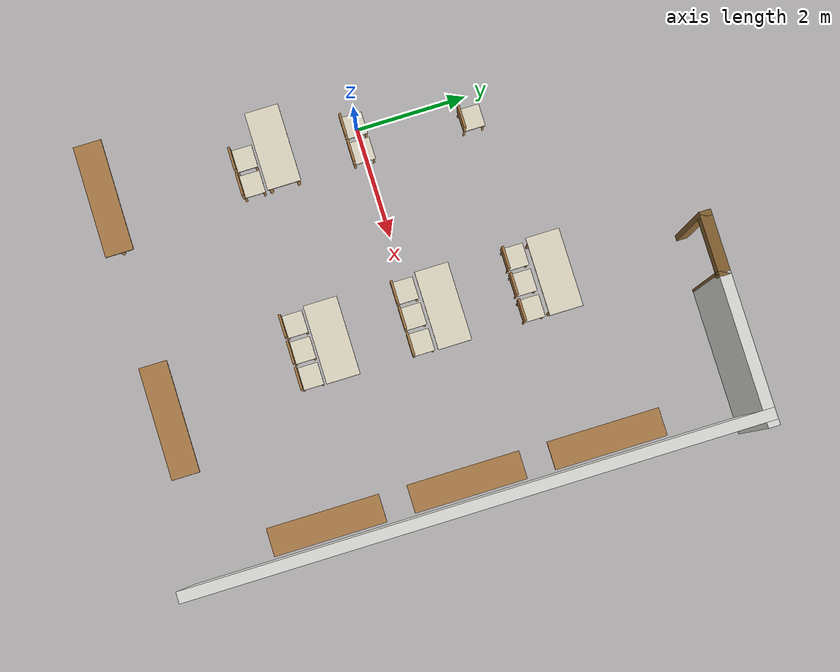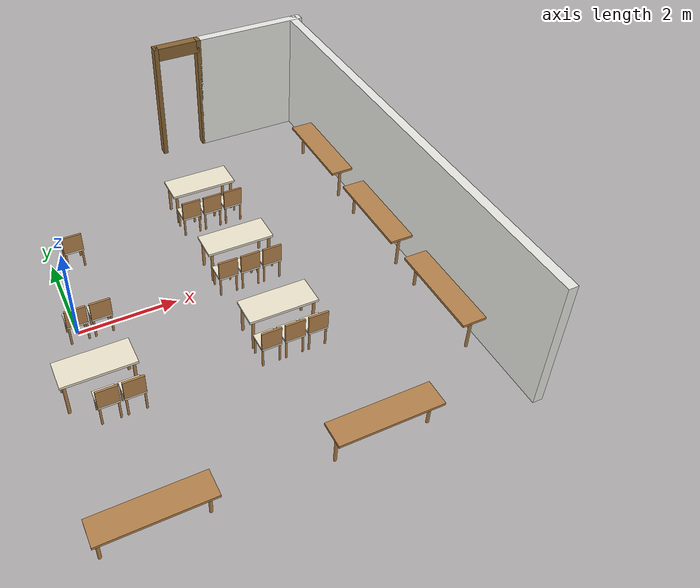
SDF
<sdf version="1.10">
 <world name="mecanum_classroom">
  <model name="wall_north_C">
   <static>true</static>
   <pose>5.8 4.9 1.4 0 0 0</pose>
   <link name="link">
    <collision name="col"><geometry><box><size>2.6 0.2 2.8</size></box></geometry></collision>
    <visual name="vis">
     <geometry><box><size>2.6 0.2 2.8</size></box></geometry>
     <material><ambient>0.92 0.92 0.90 1</ambient><diffuse>0.92 0.92 0.90 1</diffuse></material>
    </visual>
   </link>
  </model>
  <model name="wall_east">
   <static>true</static>
   <pose>6.9 0.0 1.4 0 0 0</pose>
   <link name="link">
    <collision name="col"><geometry><box><size>0.2 10.0 2.8</size></box></geometry></collision>
    <visual name="vis">
     <geometry><box><size>0.2 10.0 2.8</size></box></geometry>
     <material><ambient>0.92 0.92 0.90 1</ambient><diffuse>0.92 0.92 0.90 1</diffuse></material>
    </visual>
   </link>
  </model>
  <model name="door_pillar_RL">
   <static>true</static>
   <pose>3.5 4.9 1.4 0 0 0</pose>
   <link name="link">
    <collision name="col"><geometry><box><size>0.1 0.2 2.8</size></box></geometry></collision>
    <visual name="vis">
     <geometry><box><size>0.1 0.2 2.8</size></box></geometry>
     <material><ambient>0.55 0.40 0.20 1</ambient><diffuse>0.55 0.40 0.20 1</diffuse></material>
    </visual>
   </link>
  </model>
  <model name="door_pillar_RR">
   <static>true</static>
   <pose>4.5 4.9 1.4 0 0 0</pose>
   <link name="link">
    <collision name="col"><geometry><box><size>0.1 0.2 2.8</size></box></geometry></collision>
    <visual name="vis">
     <geometry><box><size>0.1 0.2 2.8</size></box></geometry>
     <material><ambient>0.55 0.40 0.20 1</ambient><diffuse>0.55 0.40 0.20 1</diffuse></material>
    </visual>
   </link>
  </model>
  <model name="door_R_lintel">
   <static>true</static>
   <pose>4.0 4.9 2.65 0 0 0</pose>
   <link name="link">
    <collision name="col"><geometry><box><size>1.0 0.2 0.3</size></box></geometry></collision>
    <visual name="vis">
     <geometry><box><size>1.0 0.2 0.3</size></box></geometry>
     <material><ambient>0.55 0.40 0.20 1</ambient><diffuse>0.55 0.40 0.20 1</diffuse></material>
    </visual>
   </link>
  </model>
  <model name="chr_r1c2_c">
   <static>true</static>
   <pose>0.47 1.95 0.45 0 0 0</pose>
   <link name="link">
    <visual name="seat">
     <geometry><box><size>0.40 0.40 0.04</size></box></geometry>
     <material><ambient>0.94 0.91 0.82 1</ambient><diffuse>0.94 0.91 0.82 1</diffuse></material>
    </visual>
    <visual name="back">
     <pose>0 -0.18 0.22 0 0 0</pose>
     <geometry><box><size>0.40 0.04 0.40</size></box></geometry>
     <material><ambient>0.72 0.52 0.30 1</ambient><diffuse>0.72 0.52 0.30 1</diffuse></material>
    </visual>
    <visual name="leg_fl">
     <pose>-0.17 -0.17 -0.225 0 0 0</pose>
     <geometry><cylinder><radius>0.02</radius><length>0.45</length></cylinder></geometry>
     <material><ambient>0.72 0.52 0.30 1</ambient><diffuse>0.72 0.52 0.30 1</diffuse></material>
    </visual>
    <visual name="leg_fr">
     <pose>0.17 -0.17 -0.225 0 0 0</pose>
     <geometry><cylinder><radius>0.02</radius><length>0.45</length></cylinder></geometry>
     <material><ambient>0.72 0.52 0.30 1</ambient><diffuse>0.72 0.52 0.30 1</diffuse></material>
    </visual>
    <visual name="leg_bl">
     <pose>-0.17 0.17 -0.225 0 0 0</pose>
     <geometry><cylinder><radius>0.02</radius><length>0.45</length></cylinder></geometry>
     <material><ambient>0.72 0.52 0.30 1</ambient><diffuse>0.72 0.52 0.30 1</diffuse></material>
    </visual>
    <visual name="leg_br">
     <pose>0.17 0.17 -0.225 0 0 0</pose>
     <geometry><cylinder><radius>0.02</radius><length>0.45</length></cylinder></geometry>
     <material><ambient>0.72 0.52 0.30 1</ambient><diffuse>0.72 0.52 0.30 1</diffuse></material>
    </visual>
    <collision name="col"><geometry><box><size>0.40 0.40 0.04</size></box></geometry></collision>
   </link>
  </model>
  <model name="tbl_r1c3_top">
   <static>true</static>
   <pose>3.5 2.5 0.73 0 0 0</pose>
   <link name="link">
    <collision name="col"><geometry><box><size>1.4 0.6 0.05</size></box></geometry></collision>
    <visual name="vis">
     <geometry><box><size>1.4 0.6 0.05</size></box></geometry>
     <material><ambient>0.94 0.91 0.82 1</ambient><diffuse>0.94 0.91 0.82 1</diffuse></material>
    </visual>
   </link>
  </model>
  <model name="tbl_r1c3_legs">
   <static>true</static>
   <pose>3.5 2.5 0.36 0 0 0</pose>
   <link name="link">
    <collision name="col"><geometry><box><size>1.4 0.6 0.72</size></box></geometry></collision>
    <visual name="leg_fl">
     <pose>-0.62 -0.25 0 0 0 0</pose>
     <geometry><cylinder><radius>0.03</radius><length>0.72</length></cylinder></geometry>
     <material><ambient>0.72 0.52 0.30 1</ambient><diffuse>0.72 0.52 0.30 1</diffuse></material>
    </visual>
    <visual name="leg_fr">
     <pose>0.62 -0.25 0 0 0 0</pose>
     <geometry><cylinder><radius>0.03</radius><length>0.72</length></cylinder></geometry>
     <material><ambient>0.72 0.52 0.30 1</ambient><diffuse>0.72 0.52 0.30 1</diffuse></material>
    </visual>
    <visual name="leg_bl">
     <pose>-0.62 0.25 0 0 0 0</pose>
     <geometry><cylinder><radius>0.03</radius><length>0.72</length></cylinder></geometry>
     <material><ambient>0.72 0.52 0.30 1</ambient><diffuse>0.72 0.52 0.30 1</diffuse></material>
    </visual>
    <visual name="leg_br">
     <pose>0.62 0.25 0 0 0 0</pose>
     <geometry><cylinder><radius>0.03</radius><length>0.72</length></cylinder></geometry>
     <material><ambient>0.72 0.52 0.30 1</ambient><diffuse>0.72 0.52 0.30 1</diffuse></material>
    </visual>
   </link>
  </model>
  <model name="chr_r1c3_a">
   <static>true</static>
   <pose>3.03 1.95 0.45 0 0 0</pose>
   <link name="link">
    <visual name="seat">
     <geometry><box><size>0.40 0.40 0.04</size></box></geometry>
     <material><ambient>0.94 0.91 0.82 1</ambient><diffuse>0.94 0.91 0.82 1</diffuse></material>
    </visual>
    <visual name="back">
     <pose>0 -0.18 0.22 0 0 0</pose>
     <geometry><box><size>0.40 0.04 0.40</size></box></geometry>
     <material><ambient>0.72 0.52 0.30 1</ambient><diffuse>0.72 0.52 0.30 1</diffuse></material>
    </visual>
    <visual name="leg_fl">
     <pose>-0.17 -0.17 -0.225 0 0 0</pose>
     <geometry><cylinder><radius>0.02</radius><length>0.45</length></cylinder></geometry>
     <material><ambient>0.72 0.52 0.30 1</ambient><diffuse>0.72 0.52 0.30 1</diffuse></material>
    </visual>
    <visual name="leg_fr">
     <pose>0.17 -0.17 -0.225 0 0 0</pose>
     <geometry><cylinder><radius>0.02</radius><length>0.45</length></cylinder></geometry>
     <material><ambient>0.72 0.52 0.30 1</ambient><diffuse>0.72 0.52 0.30 1</diffuse></material>
    </visual>
    <visual name="leg_bl">
     <pose>-0.17 0.17 -0.225 0 0 0</pose>
     <geometry><cylinder><radius>0.02</radius><length>0.45</length></cylinder></geometry>
     <material><ambient>0.72 0.52 0.30 1</ambient><diffuse>0.72 0.52 0.30 1</diffuse></material>
    </visual>
    <visual name="leg_br">
     <pose>0.17 0.17 -0.225 0 0 0</pose>
     <geometry><cylinder><radius>0.02</radius><length>0.45</length></cylinder></geometry>
     <material><ambient>0.72 0.52 0.30 1</ambient><diffuse>0.72 0.52 0.30 1</diffuse></material>
    </visual>
    <collision name="col"><geometry><box><size>0.40 0.40 0.04</size></box></geometry></collision>
   </link>
  </model>
  <model name="chr_r1c3_b">
   <static>true</static>
   <pose>3.5 1.95 0.45 0 0 0</pose>
   <link name="link">
    <visual name="seat">
     <geometry><box><size>0.40 0.40 0.04</size></box></geometry>
     <material><ambient>0.94 0.91 0.82 1</ambient><diffuse>0.94 0.91 0.82 1</diffuse></material>
    </visual>
    <visual name="back">
     <pose>0 -0.18 0.22 0 0 0</pose>
     <geometry><box><size>0.40 0.04 0.40</size></box></geometry>
     <material><ambient>0.72 0.52 0.30 1</ambient><diffuse>0.72 0.52 0.30 1</diffuse></material>
    </visual>
    <visual name="leg_fl">
     <pose>-0.17 -0.17 -0.225 0 0 0</pose>
     <geometry><cylinder><radius>0.02</radius><length>0.45</length></cylinder></geometry>
     <material><ambient>0.72 0.52 0.30 1</ambient><diffuse>0.72 0.52 0.30 1</diffuse></material>
    </visual>
    <visual name="leg_fr">
     <pose>0.17 -0.17 -0.225 0 0 0</pose>
     <geometry><cylinder><radius>0.02</radius><length>0.45</length></cylinder></geometry>
     <material><ambient>0.72 0.52 0.30 1</ambient><diffuse>0.72 0.52 0.30 1</diffuse></material>
    </visual>
    <visual name="leg_bl">
     <pose>-0.17 0.17 -0.225 0 0 0</pose>
     <geometry><cylinder><radius>0.02</radius><length>0.45</length></cylinder></geometry>
     <material><ambient>0.72 0.52 0.30 1</ambient><diffuse>0.72 0.52 0.30 1</diffuse></material>
    </visual>
    <visual name="leg_br">
     <pose>0.17 0.17 -0.225 0 0 0</pose>
     <geometry><cylinder><radius>0.02</radius><length>0.45</length></cylinder></geometry>
     <material><ambient>0.72 0.52 0.30 1</ambient><diffuse>0.72 0.52 0.30 1</diffuse></material>
    </visual>
    <collision name="col"><geometry><box><size>0.40 0.40 0.04</size></box></geometry></collision>
   </link>
  </model>
  <model name="chr_r1c3_c">
   <static>true</static>
   <pose>3.97 1.95 0.45 0 0 0</pose>
   <link name="link">
    <visual name="seat">
     <geometry><box><size>0.40 0.40 0.04</size></box></geometry>
     <material><ambient>0.94 0.91 0.82 1</ambient><diffuse>0.94 0.91 0.82 1</diffuse></material>
    </visual>
    <visual name="back">
     <pose>0 -0.18 0.22 0 0 0</pose>
     <geometry><box><size>0.40 0.04 0.40</size></box></geometry>
     <material><ambient>0.72 0.52 0.30 1</ambient><diffuse>0.72 0.52 0.30 1</diffuse></material>
    </visual>
    <visual name="leg_fl">
     <pose>-0.17 -0.17 -0.225 0 0 0</pose>
     <geometry><cylinder><radius>0.02</radius><length>0.45</length></cylinder></geometry>
     <material><ambient>0.72 0.52 0.30 1</ambient><diffuse>0.72 0.52 0.30 1</diffuse></material>
    </visual>
    <visual name="leg_fr">
     <pose>0.17 -0.17 -0.225 0 0 0</pose>
     <geometry><cylinder><radius>0.02</radius><length>0.45</length></cylinder></geometry>
     <material><ambient>0.72 0.52 0.30 1</ambient><diffuse>0.72 0.52 0.30 1</diffuse></material>
    </visual>
    <visual name="leg_bl">
     <pose>-0.17 0.17 -0.225 0 0 0</pose>
     <geometry><cylinder><radius>0.02</radius><length>0.45</length></cylinder></geometry>
     <material><ambient>0.72 0.52 0.30 1</ambient><diffuse>0.72 0.52 0.30 1</diffuse></material>
    </visual>
    <visual name="leg_br">
     <pose>0.17 0.17 -0.225 0 0 0</pose>
     <geometry><cylinder><radius>0.02</radius><length>0.45</length></cylinder></geometry>
     <material><ambient>0.72 0.52 0.30 1</ambient><diffuse>0.72 0.52 0.30 1</diffuse></material>
    </visual>
    <collision name="col"><geometry><box><size>0.40 0.40 0.04</size></box></geometry></collision>
   </link>
  </model>
  <model name="chr_r2c2_b">
   <static>true</static>
   <pose>0.0 -0.05 0.45 0 0 0</pose>
   <link name="link">
    <visual name="seat">
     <geometry><box><size>0.40 0.40 0.04</size></box></geometry>
     <material><ambient>0.94 0.91 0.82 1</ambient><diffuse>0.94 0.91 0.82 1</diffuse></material>
    </visual>
    <visual name="back">
     <pose>0 -0.18 0.22 0 0 0</pose>
     <geometry><box><size>0.40 0.04 0.40</size></box></geometry>
     <material><ambient>0.72 0.52 0.30 1</ambient><diffuse>0.72 0.52 0.30 1</diffuse></material>
    </visual>
    <visual name="leg_fl">
     <pose>-0.17 -0.17 -0.225 0 0 0</pose>
     <geometry><cylinder><radius>0.02</radius><length>0.45</length></cylinder></geometry>
     <material><ambient>0.72 0.52 0.30 1</ambient><diffuse>0.72 0.52 0.30 1</diffuse></material>
    </visual>
    <visual name="leg_fr">
     <pose>0.17 -0.17 -0.225 0 0 0</pose>
     <geometry><cylinder><radius>0.02</radius><length>0.45</length></cylinder></geometry>
     <material><ambient>0.72 0.52 0.30 1</ambient><diffuse>0.72 0.52 0.30 1</diffuse></material>
    </visual>
    <visual name="leg_bl">
     <pose>-0.17 0.17 -0.225 0 0 0</pose>
     <geometry><cylinder><radius>0.02</radius><length>0.45</length></cylinder></geometry>
     <material><ambient>0.72 0.52 0.30 1</ambient><diffuse>0.72 0.52 0.30 1</diffuse></material>
    </visual>
    <visual name="leg_br">
     <pose>0.17 0.17 -0.225 0 0 0</pose>
     <geometry><cylinder><radius>0.02</radius><length>0.45</length></cylinder></geometry>
     <material><ambient>0.72 0.52 0.30 1</ambient><diffuse>0.72 0.52 0.30 1</diffuse></material>
    </visual>
    <collision name="col"><geometry><box><size>0.40 0.40 0.04</size></box></geometry></collision>
   </link>
  </model>
  <model name="chr_r2c2_c">
   <static>true</static>
   <pose>0.47 -0.05 0.45 0 0 0</pose>
   <link name="link">
    <visual name="seat">
     <geometry><box><size>0.40 0.40 0.04</size></box></geometry>
     <material><ambient>0.94 0.91 0.82 1</ambient><diffuse>0.94 0.91 0.82 1</diffuse></material>
    </visual>
    <visual name="back">
     <pose>0 -0.18 0.22 0 0 0</pose>
     <geometry><box><size>0.40 0.04 0.40</size></box></geometry>
     <material><ambient>0.72 0.52 0.30 1</ambient><diffuse>0.72 0.52 0.30 1</diffuse></material>
    </visual>
    <visual name="leg_fl">
     <pose>-0.17 -0.17 -0.225 0 0 0</pose>
     <geometry><cylinder><radius>0.02</radius><length>0.45</length></cylinder></geometry>
     <material><ambient>0.72 0.52 0.30 1</ambient><diffuse>0.72 0.52 0.30 1</diffuse></material>
    </visual>
    <visual name="leg_fr">
     <pose>0.17 -0.17 -0.225 0 0 0</pose>
     <geometry><cylinder><radius>0.02</radius><length>0.45</length></cylinder></geometry>
     <material><ambient>0.72 0.52 0.30 1</ambient><diffuse>0.72 0.52 0.30 1</diffuse></material>
    </visual>
    <visual name="leg_bl">
     <pose>-0.17 0.17 -0.225 0 0 0</pose>
     <geometry><cylinder><radius>0.02</radius><length>0.45</length></cylinder></geometry>
     <material><ambient>0.72 0.52 0.30 1</ambient><diffuse>0.72 0.52 0.30 1</diffuse></material>
    </visual>
    <visual name="leg_br">
     <pose>0.17 0.17 -0.225 0 0 0</pose>
     <geometry><cylinder><radius>0.02</radius><length>0.45</length></cylinder></geometry>
     <material><ambient>0.72 0.52 0.30 1</ambient><diffuse>0.72 0.52 0.30 1</diffuse></material>
    </visual>
    <collision name="col"><geometry><box><size>0.40 0.40 0.04</size></box></geometry></collision>
   </link>
  </model>
  <model name="tbl_r2c3_top">
   <static>true</static>
   <pose>3.5 0.5 0.73 0 0 0</pose>
   <link name="link">
    <collision name="col"><geometry><box><size>1.4 0.6 0.05</size></box></geometry></collision>
    <visual name="vis">
     <geometry><box><size>1.4 0.6 0.05</size></box></geometry>
     <material><ambient>0.94 0.91 0.82 1</ambient><diffuse>0.94 0.91 0.82 1</diffuse></material>
    </visual>
   </link>
  </model>
  <model name="tbl_r2c3_legs">
   <static>true</static>
   <pose>3.5 0.5 0.36 0 0 0</pose>
   <link name="link">
    <collision name="col"><geometry><box><size>1.4 0.6 0.72</size></box></geometry></collision>
    <visual name="leg_fl">
     <pose>-0.62 -0.25 0 0 0 0</pose>
     <geometry><cylinder><radius>0.03</radius><length>0.72</length></cylinder></geometry>
     <material><ambient>0.72 0.52 0.30 1</ambient><diffuse>0.72 0.52 0.30 1</diffuse></material>
    </visual>
    <visual name="leg_fr">
     <pose>0.62 -0.25 0 0 0 0</pose>
     <geometry><cylinder><radius>0.03</radius><length>0.72</length></cylinder></geometry>
     <material><ambient>0.72 0.52 0.30 1</ambient><diffuse>0.72 0.52 0.30 1</diffuse></material>
    </visual>
    <visual name="leg_bl">
     <pose>-0.62 0.25 0 0 0 0</pose>
     <geometry><cylinder><radius>0.03</radius><length>0.72</length></cylinder></geometry>
     <material><ambient>0.72 0.52 0.30 1</ambient><diffuse>0.72 0.52 0.30 1</diffuse></material>
    </visual>
    <visual name="leg_br">
     <pose>0.62 0.25 0 0 0 0</pose>
     <geometry><cylinder><radius>0.03</radius><length>0.72</length></cylinder></geometry>
     <material><ambient>0.72 0.52 0.30 1</ambient><diffuse>0.72 0.52 0.30 1</diffuse></material>
    </visual>
   </link>
  </model>
  <model name="chr_r2c3_a">
   <static>true</static>
   <pose>3.03 -0.05 0.45 0 0 0</pose>
   <link name="link">
    <visual name="seat">
     <geometry><box><size>0.40 0.40 0.04</size></box></geometry>
     <material><ambient>0.94 0.91 0.82 1</ambient><diffuse>0.94 0.91 0.82 1</diffuse></material>
    </visual>
    <visual name="back">
     <pose>0 -0.18 0.22 0 0 0</pose>
     <geometry><box><size>0.40 0.04 0.40</size></box></geometry>
     <material><ambient>0.72 0.52 0.30 1</ambient><diffuse>0.72 0.52 0.30 1</diffuse></material>
    </visual>
    <visual name="leg_fl">
     <pose>-0.17 -0.17 -0.225 0 0 0</pose>
     <geometry><cylinder><radius>0.02</radius><length>0.45</length></cylinder></geometry>
     <material><ambient>0.72 0.52 0.30 1</ambient><diffuse>0.72 0.52 0.30 1</diffuse></material>
    </visual>
    <visual name="leg_fr">
     <pose>0.17 -0.17 -0.225 0 0 0</pose>
     <geometry><cylinder><radius>0.02</radius><length>0.45</length></cylinder></geometry>
     <material><ambient>0.72 0.52 0.30 1</ambient><diffuse>0.72 0.52 0.30 1</diffuse></material>
    </visual>
    <visual name="leg_bl">
     <pose>-0.17 0.17 -0.225 0 0 0</pose>
     <geometry><cylinder><radius>0.02</radius><length>0.45</length></cylinder></geometry>
     <material><ambient>0.72 0.52 0.30 1</ambient><diffuse>0.72 0.52 0.30 1</diffuse></material>
    </visual>
    <visual name="leg_br">
     <pose>0.17 0.17 -0.225 0 0 0</pose>
     <geometry><cylinder><radius>0.02</radius><length>0.45</length></cylinder></geometry>
     <material><ambient>0.72 0.52 0.30 1</ambient><diffuse>0.72 0.52 0.30 1</diffuse></material>
    </visual>
    <collision name="col"><geometry><box><size>0.40 0.40 0.04</size></box></geometry></collision>
   </link>
  </model>
  <model name="chr_r2c3_b">
   <static>true</static>
   <pose>3.5 -0.05 0.45 0 0 0</pose>
   <link name="link">
    <visual name="seat">
     <geometry><box><size>0.40 0.40 0.04</size></box></geometry>
     <material><ambient>0.94 0.91 0.82 1</ambient><diffuse>0.94 0.91 0.82 1</diffuse></material>
    </visual>
    <visual name="back">
     <pose>0 -0.18 0.22 0 0 0</pose>
     <geometry><box><size>0.40 0.04 0.40</size></box></geometry>
     <material><ambient>0.72 0.52 0.30 1</ambient><diffuse>0.72 0.52 0.30 1</diffuse></material>
    </visual>
    <visual name="leg_fl">
     <pose>-0.17 -0.17 -0.225 0 0 0</pose>
     <geometry><cylinder><radius>0.02</radius><length>0.45</length></cylinder></geometry>
     <material><ambient>0.72 0.52 0.30 1</ambient><diffuse>0.72 0.52 0.30 1</diffuse></material>
    </visual>
    <visual name="leg_fr">
     <pose>0.17 -0.17 -0.225 0 0 0</pose>
     <geometry><cylinder><radius>0.02</radius><length>0.45</length></cylinder></geometry>
     <material><ambient>0.72 0.52 0.30 1</ambient><diffuse>0.72 0.52 0.30 1</diffuse></material>
    </visual>
    <visual name="leg_bl">
     <pose>-0.17 0.17 -0.225 0 0 0</pose>
     <geometry><cylinder><radius>0.02</radius><length>0.45</length></cylinder></geometry>
     <material><ambient>0.72 0.52 0.30 1</ambient><diffuse>0.72 0.52 0.30 1</diffuse></material>
    </visual>
    <visual name="leg_br">
     <pose>0.17 0.17 -0.225 0 0 0</pose>
     <geometry><cylinder><radius>0.02</radius><length>0.45</length></cylinder></geometry>
     <material><ambient>0.72 0.52 0.30 1</ambient><diffuse>0.72 0.52 0.30 1</diffuse></material>
    </visual>
    <collision name="col"><geometry><box><size>0.40 0.40 0.04</size></box></geometry></collision>
   </link>
  </model>
  <model name="chr_r2c3_c">
   <static>true</static>
   <pose>3.97 -0.05 0.45 0 0 0</pose>
   <link name="link">
    <visual name="seat">
     <geometry><box><size>0.40 0.40 0.04</size></box></geometry>
     <material><ambient>0.94 0.91 0.82 1</ambient><diffuse>0.94 0.91 0.82 1</diffuse></material>
    </visual>
    <visual name="back">
     <pose>0 -0.18 0.22 0 0 0</pose>
     <geometry><box><size>0.40 0.04 0.40</size></box></geometry>
     <material><ambient>0.72 0.52 0.30 1</ambient><diffuse>0.72 0.52 0.30 1</diffuse></material>
    </visual>
    <visual name="leg_fl">
     <pose>-0.17 -0.17 -0.225 0 0 0</pose>
     <geometry><cylinder><radius>0.02</radius><length>0.45</length></cylinder></geometry>
     <material><ambient>0.72 0.52 0.30 1</ambient><diffuse>0.72 0.52 0.30 1</diffuse></material>
    </visual>
    <visual name="leg_fr">
     <pose>0.17 -0.17 -0.225 0 0 0</pose>
     <geometry><cylinder><radius>0.02</radius><length>0.45</length></cylinder></geometry>
     <material><ambient>0.72 0.52 0.30 1</ambient><diffuse>0.72 0.52 0.30 1</diffuse></material>
    </visual>
    <visual name="leg_bl">
     <pose>-0.17 0.17 -0.225 0 0 0</pose>
     <geometry><cylinder><radius>0.02</radius><length>0.45</length></cylinder></geometry>
     <material><ambient>0.72 0.52 0.30 1</ambient><diffuse>0.72 0.52 0.30 1</diffuse></material>
    </visual>
    <visual name="leg_br">
     <pose>0.17 0.17 -0.225 0 0 0</pose>
     <geometry><cylinder><radius>0.02</radius><length>0.45</length></cylinder></geometry>
     <material><ambient>0.72 0.52 0.30 1</ambient><diffuse>0.72 0.52 0.30 1</diffuse></material>
    </visual>
    <collision name="col"><geometry><box><size>0.40 0.40 0.04</size></box></geometry></collision>
   </link>
  </model>
  <model name="tbl_r3c2_top">
   <static>true</static>
   <pose>0.0 -1.5 0.73 0 0 0</pose>
   <link name="link">
    <collision name="col"><geometry><box><size>1.4 0.6 0.05</size></box></geometry></collision>
    <visual name="vis">
     <geometry><box><size>1.4 0.6 0.05</size></box></geometry>
     <material><ambient>0.94 0.91 0.82 1</ambient><diffuse>0.94 0.91 0.82 1</diffuse></material>
    </visual>
   </link>
  </model>
  <model name="tbl_r3c2_legs">
   <static>true</static>
   <pose>0.0 -1.5 0.36 0 0 0</pose>
   <link name="link">
    <collision name="col"><geometry><box><size>1.4 0.6 0.72</size></box></geometry></collision>
    <visual name="leg_fl">
     <pose>-0.62 -0.25 0 0 0 0</pose>
     <geometry><cylinder><radius>0.03</radius><length>0.72</length></cylinder></geometry>
     <material><ambient>0.72 0.52 0.30 1</ambient><diffuse>0.72 0.52 0.30 1</diffuse></material>
    </visual>
    <visual name="leg_fr">
     <pose>0.62 -0.25 0 0 0 0</pose>
     <geometry><cylinder><radius>0.03</radius><length>0.72</length></cylinder></geometry>
     <material><ambient>0.72 0.52 0.30 1</ambient><diffuse>0.72 0.52 0.30 1</diffuse></material>
    </visual>
    <visual name="leg_bl">
     <pose>-0.62 0.25 0 0 0 0</pose>
     <geometry><cylinder><radius>0.03</radius><length>0.72</length></cylinder></geometry>
     <material><ambient>0.72 0.52 0.30 1</ambient><diffuse>0.72 0.52 0.30 1</diffuse></material>
    </visual>
    <visual name="leg_br">
     <pose>0.62 0.25 0 0 0 0</pose>
     <geometry><cylinder><radius>0.03</radius><length>0.72</length></cylinder></geometry>
     <material><ambient>0.72 0.52 0.30 1</ambient><diffuse>0.72 0.52 0.30 1</diffuse></material>
    </visual>
   </link>
  </model>
  <model name="chr_r3c2_b">
   <static>true</static>
   <pose>0.0 -2.05 0.45 0 0 0</pose>
   <link name="link">
    <visual name="seat">
     <geometry><box><size>0.40 0.40 0.04</size></box></geometry>
     <material><ambient>0.94 0.91 0.82 1</ambient><diffuse>0.94 0.91 0.82 1</diffuse></material>
    </visual>
    <visual name="back">
     <pose>0 -0.18 0.22 0 0 0</pose>
     <geometry><box><size>0.40 0.04 0.40</size></box></geometry>
     <material><ambient>0.72 0.52 0.30 1</ambient><diffuse>0.72 0.52 0.30 1</diffuse></material>
    </visual>
    <visual name="leg_fl">
     <pose>-0.17 -0.17 -0.225 0 0 0</pose>
     <geometry><cylinder><radius>0.02</radius><length>0.45</length></cylinder></geometry>
     <material><ambient>0.72 0.52 0.30 1</ambient><diffuse>0.72 0.52 0.30 1</diffuse></material>
    </visual>
    <visual name="leg_fr">
     <pose>0.17 -0.17 -0.225 0 0 0</pose>
     <geometry><cylinder><radius>0.02</radius><length>0.45</length></cylinder></geometry>
     <material><ambient>0.72 0.52 0.30 1</ambient><diffuse>0.72 0.52 0.30 1</diffuse></material>
    </visual>
    <visual name="leg_bl">
     <pose>-0.17 0.17 -0.225 0 0 0</pose>
     <geometry><cylinder><radius>0.02</radius><length>0.45</length></cylinder></geometry>
     <material><ambient>0.72 0.52 0.30 1</ambient><diffuse>0.72 0.52 0.30 1</diffuse></material>
    </visual>
    <visual name="leg_br">
     <pose>0.17 0.17 -0.225 0 0 0</pose>
     <geometry><cylinder><radius>0.02</radius><length>0.45</length></cylinder></geometry>
     <material><ambient>0.72 0.52 0.30 1</ambient><diffuse>0.72 0.52 0.30 1</diffuse></material>
    </visual>
    <collision name="col"><geometry><box><size>0.40 0.40 0.04</size></box></geometry></collision>
   </link>
  </model>
  <model name="chr_r3c2_c">
   <static>true</static>
   <pose>0.47 -2.05 0.45 0 0 0</pose>
   <link name="link">
    <visual name="seat">
     <geometry><box><size>0.40 0.40 0.04</size></box></geometry>
     <material><ambient>0.94 0.91 0.82 1</ambient><diffuse>0.94 0.91 0.82 1</diffuse></material>
    </visual>
    <visual name="back">
     <pose>0 -0.18 0.22 0 0 0</pose>
     <geometry><box><size>0.40 0.04 0.40</size></box></geometry>
     <material><ambient>0.72 0.52 0.30 1</ambient><diffuse>0.72 0.52 0.30 1</diffuse></material>
    </visual>
    <visual name="leg_fl">
     <pose>-0.17 -0.17 -0.225 0 0 0</pose>
     <geometry><cylinder><radius>0.02</radius><length>0.45</length></cylinder></geometry>
     <material><ambient>0.72 0.52 0.30 1</ambient><diffuse>0.72 0.52 0.30 1</diffuse></material>
    </visual>
    <visual name="leg_fr">
     <pose>0.17 -0.17 -0.225 0 0 0</pose>
     <geometry><cylinder><radius>0.02</radius><length>0.45</length></cylinder></geometry>
     <material><ambient>0.72 0.52 0.30 1</ambient><diffuse>0.72 0.52 0.30 1</diffuse></material>
    </visual>
    <visual name="leg_bl">
     <pose>-0.17 0.17 -0.225 0 0 0</pose>
     <geometry><cylinder><radius>0.02</radius><length>0.45</length></cylinder></geometry>
     <material><ambient>0.72 0.52 0.30 1</ambient><diffuse>0.72 0.52 0.30 1</diffuse></material>
    </visual>
    <visual name="leg_br">
     <pose>0.17 0.17 -0.225 0 0 0</pose>
     <geometry><cylinder><radius>0.02</radius><length>0.45</length></cylinder></geometry>
     <material><ambient>0.72 0.52 0.30 1</ambient><diffuse>0.72 0.52 0.30 1</diffuse></material>
    </visual>
    <collision name="col"><geometry><box><size>0.40 0.40 0.04</size></box></geometry></collision>
   </link>
  </model>
  <model name="tbl_r3c3_top">
   <static>true</static>
   <pose>3.5 -1.5 0.73 0 0 0</pose>
   <link name="link">
    <collision name="col"><geometry><box><size>1.4 0.6 0.05</size></box></geometry></collision>
    <visual name="vis">
     <geometry><box><size>1.4 0.6 0.05</size></box></geometry>
     <material><ambient>0.94 0.91 0.82 1</ambient><diffuse>0.94 0.91 0.82 1</diffuse></material>
    </visual>
   </link>
  </model>
  <model name="tbl_r3c3_legs">
   <static>true</static>
   <pose>3.5 -1.5 0.36 0 0 0</pose>
   <link name="link">
    <collision name="col"><geometry><box><size>1.4 0.6 0.72</size></box></geometry></collision>
    <visual name="leg_fl">
     <pose>-0.62 -0.25 0 0 0 0</pose>
     <geometry><cylinder><radius>0.03</radius><length>0.72</length></cylinder></geometry>
     <material><ambient>0.72 0.52 0.30 1</ambient><diffuse>0.72 0.52 0.30 1</diffuse></material>
    </visual>
    <visual name="leg_fr">
     <pose>0.62 -0.25 0 0 0 0</pose>
     <geometry><cylinder><radius>0.03</radius><length>0.72</length></cylinder></geometry>
     <material><ambient>0.72 0.52 0.30 1</ambient><diffuse>0.72 0.52 0.30 1</diffuse></material>
    </visual>
    <visual name="leg_bl">
     <pose>-0.62 0.25 0 0 0 0</pose>
     <geometry><cylinder><radius>0.03</radius><length>0.72</length></cylinder></geometry>
     <material><ambient>0.72 0.52 0.30 1</ambient><diffuse>0.72 0.52 0.30 1</diffuse></material>
    </visual>
    <visual name="leg_br">
     <pose>0.62 0.25 0 0 0 0</pose>
     <geometry><cylinder><radius>0.03</radius><length>0.72</length></cylinder></geometry>
     <material><ambient>0.72 0.52 0.30 1</ambient><diffuse>0.72 0.52 0.30 1</diffuse></material>
    </visual>
   </link>
  </model>
  <model name="chr_r3c3_a">
   <static>true</static>
   <pose>3.03 -2.05 0.45 0 0 0</pose>
   <link name="link">
    <visual name="seat">
     <geometry><box><size>0.40 0.40 0.04</size></box></geometry>
     <material><ambient>0.94 0.91 0.82 1</ambient><diffuse>0.94 0.91 0.82 1</diffuse></material>
    </visual>
    <visual name="back">
     <pose>0 -0.18 0.22 0 0 0</pose>
     <geometry><box><size>0.40 0.04 0.40</size></box></geometry>
     <material><ambient>0.72 0.52 0.30 1</ambient><diffuse>0.72 0.52 0.30 1</diffuse></material>
    </visual>
    <visual name="leg_fl">
     <pose>-0.17 -0.17 -0.225 0 0 0</pose>
     <geometry><cylinder><radius>0.02</radius><length>0.45</length></cylinder></geometry>
     <material><ambient>0.72 0.52 0.30 1</ambient><diffuse>0.72 0.52 0.30 1</diffuse></material>
    </visual>
    <visual name="leg_fr">
     <pose>0.17 -0.17 -0.225 0 0 0</pose>
     <geometry><cylinder><radius>0.02</radius><length>0.45</length></cylinder></geometry>
     <material><ambient>0.72 0.52 0.30 1</ambient><diffuse>0.72 0.52 0.30 1</diffuse></material>
    </visual>
    <visual name="leg_bl">
     <pose>-0.17 0.17 -0.225 0 0 0</pose>
     <geometry><cylinder><radius>0.02</radius><length>0.45</length></cylinder></geometry>
     <material><ambient>0.72 0.52 0.30 1</ambient><diffuse>0.72 0.52 0.30 1</diffuse></material>
    </visual>
    <visual name="leg_br">
     <pose>0.17 0.17 -0.225 0 0 0</pose>
     <geometry><cylinder><radius>0.02</radius><length>0.45</length></cylinder></geometry>
     <material><ambient>0.72 0.52 0.30 1</ambient><diffuse>0.72 0.52 0.30 1</diffuse></material>
    </visual>
    <collision name="col"><geometry><box><size>0.40 0.40 0.04</size></box></geometry></collision>
   </link>
  </model>
  <model name="chr_r3c3_b">
   <static>true</static>
   <pose>3.5 -2.05 0.45 0 0 0</pose>
   <link name="link">
    <visual name="seat">
     <geometry><box><size>0.40 0.40 0.04</size></box></geometry>
     <material><ambient>0.94 0.91 0.82 1</ambient><diffuse>0.94 0.91 0.82 1</diffuse></material>
    </visual>
    <visual name="back">
     <pose>0 -0.18 0.22 0 0 0</pose>
     <geometry><box><size>0.40 0.04 0.40</size></box></geometry>
     <material><ambient>0.72 0.52 0.30 1</ambient><diffuse>0.72 0.52 0.30 1</diffuse></material>
    </visual>
    <visual name="leg_fl">
     <pose>-0.17 -0.17 -0.225 0 0 0</pose>
     <geometry><cylinder><radius>0.02</radius><length>0.45</length></cylinder></geometry>
     <material><ambient>0.72 0.52 0.30 1</ambient><diffuse>0.72 0.52 0.30 1</diffuse></material>
    </visual>
    <visual name="leg_fr">
     <pose>0.17 -0.17 -0.225 0 0 0</pose>
     <geometry><cylinder><radius>0.02</radius><length>0.45</length></cylinder></geometry>
     <material><ambient>0.72 0.52 0.30 1</ambient><diffuse>0.72 0.52 0.30 1</diffuse></material>
    </visual>
    <visual name="leg_bl">
     <pose>-0.17 0.17 -0.225 0 0 0</pose>
     <geometry><cylinder><radius>0.02</radius><length>0.45</length></cylinder></geometry>
     <material><ambient>0.72 0.52 0.30 1</ambient><diffuse>0.72 0.52 0.30 1</diffuse></material>
    </visual>
    <visual name="leg_br">
     <pose>0.17 0.17 -0.225 0 0 0</pose>
     <geometry><cylinder><radius>0.02</radius><length>0.45</length></cylinder></geometry>
     <material><ambient>0.72 0.52 0.30 1</ambient><diffuse>0.72 0.52 0.30 1</diffuse></material>
    </visual>
    <collision name="col"><geometry><box><size>0.40 0.40 0.04</size></box></geometry></collision>
   </link>
  </model>
  <model name="chr_r3c3_c">
   <static>true</static>
   <pose>3.97 -2.05 0.45 0 0 0</pose>
   <link name="link">
    <visual name="seat">
     <geometry><box><size>0.40 0.40 0.04</size></box></geometry>
     <material><ambient>0.94 0.91 0.82 1</ambient><diffuse>0.94 0.91 0.82 1</diffuse></material>
    </visual>
    <visual name="back">
     <pose>0 -0.18 0.22 0 0 0</pose>
     <geometry><box><size>0.40 0.04 0.40</size></box></geometry>
     <material><ambient>0.72 0.52 0.30 1</ambient><diffuse>0.72 0.52 0.30 1</diffuse></material>
    </visual>
    <visual name="leg_fl">
     <pose>-0.17 -0.17 -0.225 0 0 0</pose>
     <geometry><cylinder><radius>0.02</radius><length>0.45</length></cylinder></geometry>
     <material><ambient>0.72 0.52 0.30 1</ambient><diffuse>0.72 0.52 0.30 1</diffuse></material>
    </visual>
    <visual name="leg_fr">
     <pose>0.17 -0.17 -0.225 0 0 0</pose>
     <geometry><cylinder><radius>0.02</radius><length>0.45</length></cylinder></geometry>
     <material><ambient>0.72 0.52 0.30 1</ambient><diffuse>0.72 0.52 0.30 1</diffuse></material>
    </visual>
    <visual name="leg_bl">
     <pose>-0.17 0.17 -0.225 0 0 0</pose>
     <geometry><cylinder><radius>0.02</radius><length>0.45</length></cylinder></geometry>
     <material><ambient>0.72 0.52 0.30 1</ambient><diffuse>0.72 0.52 0.30 1</diffuse></material>
    </visual>
    <visual name="leg_br">
     <pose>0.17 0.17 -0.225 0 0 0</pose>
     <geometry><cylinder><radius>0.02</radius><length>0.45</length></cylinder></geometry>
     <material><ambient>0.72 0.52 0.30 1</ambient><diffuse>0.72 0.52 0.30 1</diffuse></material>
    </visual>
    <collision name="col"><geometry><box><size>0.40 0.40 0.04</size></box></geometry></collision>
   </link>
  </model>
  <model name="wall_tbl_e1">
   <static>true</static>
   <pose>6.5 2.5 0.73 0 0 0</pose>
   <link name="link">
    <collision name="col"><geometry><box><size>0.5 2.0 0.05</size></box></geometry></collision>
    <visual name="vis">
     <geometry><box><size>0.5 2.0 0.05</size></box></geometry>
     <material><ambient>0.72 0.52 0.30 1</ambient><diffuse>0.72 0.52 0.30 1</diffuse></material>
    </visual>
   </link>
  </model>
  <model name="wall_tbl_e1_legs">
   <static>true</static>
   <pose>6.5 2.5 0.36 0 0 0</pose>
   <link name="link">
    <collision name="col"><geometry><box><size>0.5 2.0 0.72</size></box></geometry></collision>
    <visual name="leg_a">
     <pose>0 -0.9 0 0 0 0</pose>
     <geometry><cylinder><radius>0.03</radius><length>0.72</length></cylinder></geometry>
     <material><ambient>0.72 0.52 0.30 1</ambient><diffuse>0.72 0.52 0.30 1</diffuse></material>
    </visual>
    <visual name="leg_b">
     <pose>0 0.9 0 0 0 0</pose>
     <geometry><cylinder><radius>0.03</radius><length>0.72</length></cylinder></geometry>
     <material><ambient>0.72 0.52 0.30 1</ambient><diffuse>0.72 0.52 0.30 1</diffuse></material>
    </visual>
   </link>
  </model>
  <model name="wall_tbl_e2">
   <static>true</static>
   <pose>6.5 0.0 0.73 0 0 0</pose>
   <link name="link">
    <collision name="col"><geometry><box><size>0.5 2.0 0.05</size></box></geometry></collision>
    <visual name="vis">
     <geometry><box><size>0.5 2.0 0.05</size></box></geometry>
     <material><ambient>0.72 0.52 0.30 1</ambient><diffuse>0.72 0.52 0.30 1</diffuse></material>
    </visual>
   </link>
  </model>
  <model name="wall_tbl_e2_legs">
   <static>true</static>
   <pose>6.5 0.0 0.36 0 0 0</pose>
   <link name="link">
    <collision name="col"><geometry><box><size>0.5 2.0 0.72</size></box></geometry></collision>
    <visual name="leg_a">
     <pose>0 -0.9 0 0 0 0</pose>
     <geometry><cylinder><radius>0.03</radius><length>0.72</length></cylinder></geometry>
     <material><ambient>0.72 0.52 0.30 1</ambient><diffuse>0.72 0.52 0.30 1</diffuse></material>
    </visual>
    <visual name="leg_b">
     <pose>0 0.9 0 0 0 0</pose>
     <geometry><cylinder><radius>0.03</radius><length>0.72</length></cylinder></geometry>
     <material><ambient>0.72 0.52 0.30 1</ambient><diffuse>0.72 0.52 0.30 1</diffuse></material>
    </visual>
   </link>
  </model>
  <model name="wall_tbl_e3">
   <static>true</static>
   <pose>6.5 -2.5 0.73 0 0 0</pose>
   <link name="link">
    <collision name="col"><geometry><box><size>0.5 2.0 0.05</size></box></geometry></collision>
    <visual name="vis">
     <geometry><box><size>0.5 2.0 0.05</size></box></geometry>
     <material><ambient>0.72 0.52 0.30 1</ambient><diffuse>0.72 0.52 0.30 1</diffuse></material>
    </visual>
   </link>
  </model>
  <model name="wall_tbl_e3_legs">
   <static>true</static>
   <pose>6.5 -2.5 0.36 0 0 0</pose>
   <link name="link">
    <collision name="col"><geometry><box><size>0.5 2.0 0.72</size></box></geometry></collision>
    <visual name="leg_a">
     <pose>0 -0.9 0 0 0 0</pose>
     <geometry><cylinder><radius>0.03</radius><length>0.72</length></cylinder></geometry>
     <material><ambient>0.72 0.52 0.30 1</ambient><diffuse>0.72 0.52 0.30 1</diffuse></material>
    </visual>
    <visual name="leg_b">
     <pose>0 0.9 0 0 0 0</pose>
     <geometry><cylinder><radius>0.03</radius><length>0.72</length></cylinder></geometry>
     <material><ambient>0.72 0.52 0.30 1</ambient><diffuse>0.72 0.52 0.30 1</diffuse></material>
    </visual>
   </link>
  </model>
  <model name="wall_tbl_s2">
   <static>true</static>
   <pose>0.0 -4.55 0.73 0 0 0</pose>
   <link name="link">
    <collision name="col"><geometry><box><size>2.0 0.5 0.05</size></box></geometry></collision>
    <visual name="vis">
     <geometry><box><size>2.0 0.5 0.05</size></box></geometry>
     <material><ambient>0.72 0.52 0.30 1</ambient><diffuse>0.72 0.52 0.30 1</diffuse></material>
    </visual>
   </link>
  </model>
  <model name="wall_tbl_s2_legs">
   <static>true</static>
   <pose>0.0 -4.55 0.36 0 0 0</pose>
   <link name="link">
    <collision name="col"><geometry><box><size>2.0 0.5 0.72</size></box></geometry></collision>
    <visual name="leg_a">
     <pose>-0.9 0 0 0 0 0</pose>
     <geometry><cylinder><radius>0.03</radius><length>0.72</length></cylinder></geometry>
     <material><ambient>0.72 0.52 0.30 1</ambient><diffuse>0.72 0.52 0.30 1</diffuse></material>
    </visual>
    <visual name="leg_b">
     <pose>0.9 0 0 0 0 0</pose>
     <geometry><cylinder><radius>0.03</radius><length>0.72</length></cylinder></geometry>
     <material><ambient>0.72 0.52 0.30 1</ambient><diffuse>0.72 0.52 0.30 1</diffuse></material>
    </visual>
   </link>
  </model>
  <model name="wall_tbl_s3">
   <static>true</static>
   <pose>4.0 -4.55 0.73 0 0 0</pose>
   <link name="link">
    <collision name="col"><geometry><box><size>2.0 0.5 0.05</size></box></geometry></collision>
    <visual name="vis">
     <geometry><box><size>2.0 0.5 0.05</size></box></geometry>
     <material><ambient>0.72 0.52 0.30 1</ambient><diffuse>0.72 0.52 0.30 1</diffuse></material>
    </visual>
   </link>
  </model>
  <model name="wall_tbl_s3_legs">
   <static>true</static>
   <pose>4.0 -4.55 0.36 0 0 0</pose>
   <link name="link">
    <collision name="col"><geometry><box><size>2.0 0.5 0.72</size></box></geometry></collision>
    <visual name="leg_a">
     <pose>-0.9 0 0 0 0 0</pose>
     <geometry><cylinder><radius>0.03</radius><length>0.72</length></cylinder></geometry>
     <material><ambient>0.72 0.52 0.30 1</ambient><diffuse>0.72 0.52 0.30 1</diffuse></material>
    </visual>
    <visual name="leg_b">
     <pose>0.9 0 0 0 0 0</pose>
     <geometry><cylinder><radius>0.03</radius><length>0.72</length></cylinder></geometry>
     <material><ambient>0.72 0.52 0.30 1</ambient><diffuse>0.72 0.52 0.30 1</diffuse></material>
    </visual>
   </link>
  </model>
 </world>
</sdf>
